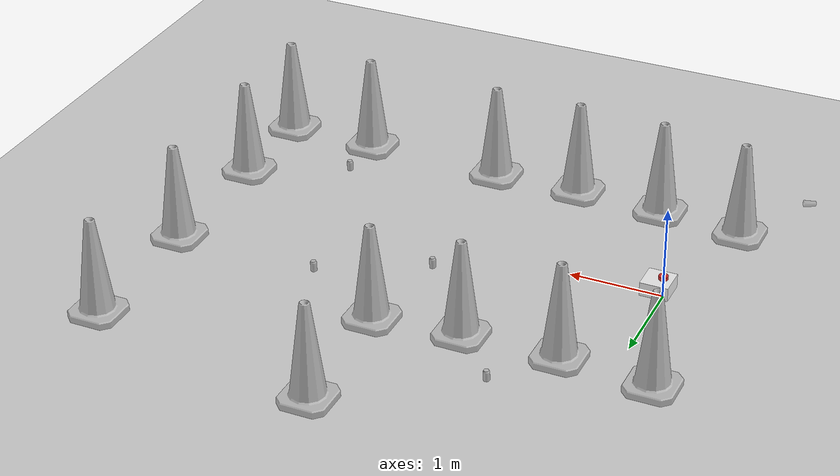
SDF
<sdf version="1.7">
 <world name="default">
  <light name="sun" type="directional">
   <pose>0 0 10 0 -0 0</pose>
   <diffuse>0.8 0.8 0.8 1</diffuse>
   <specular>0.2 0.2 0.2 1</specular>
   <attenuation>
    <range>1000</range>
    <constant>0.9</constant>
    <linear>0.01</linear>
    <quadratic>0.001</quadratic>
   </attenuation>
   <direction>-0.5 0.1 -0.9</direction>
   <spot><inner_angle>0</inner_angle><outer_angle>0</outer_angle><falloff>0</falloff></spot>
  </light>
  <model name="ground_plane">
   <static>1</static>
   <link name="link">
    <collision name="collision">
     <geometry><plane><normal>0 0 1</normal><size>100 100</size></plane></geometry>
     <surface>
      <contact><collide_bitmask>65535</collide_bitmask></contact>
      <friction><ode><mu>100</mu><mu2>50</mu2></ode></friction>
     </surface>
    </collision>
    <visual name="visual">
     <cast_shadows>0</cast_shadows>
     <geometry><plane><normal>0 0 1</normal><size>100 100</size></plane></geometry>
     <material>
      <script><uri>file://media/materials/scripts/gazebo.material</uri><name>Gazebo/Grey</name></script>
     </material>
    </visual>
   </link>
  </model>
  <gravity>0 0 -9.8</gravity>
  <magnetic_field>6e-06 2.3e-05 -4.2e-05</magnetic_field>
  <atmosphere type="adiabatic"/>
  <physics type="ode">
   <max_step_size>0.001</max_step_size>
   <real_time_factor>1</real_time_factor>
   <real_time_update_rate>1000</real_time_update_rate>
  </physics>
  <scene><ambient>0.4 0.4 0.4 1</ambient><background>0.7 0.7 0.7 1</background><shadows>1</shadows></scene>
  <audio><device>default</device></audio>
  <spherical_coordinates>
   <surface_model>EARTH_WGS84</surface_model>
   <latitude_deg>0</latitude_deg>
   <longitude_deg>0</longitude_deg>
   <elevation>0</elevation>
   <heading_deg>0</heading_deg>
  </spherical_coordinates>
  <model name="snail_bot">
   <link name="base_link">
    <inertial>
     <pose>0.055714 0 0.078571 0 -0 0</pose>
     <mass>0.7</mass>
     <inertia>
      <ixx>0.0064169</ixx>
      <ixy>0</ixy>
      <ixz>0.00118929</ixz>
      <iyy>0.00745405</iyy>
      <iyz>0</iyz>
      <izz>0.00876214</izz>
     </inertia>
    </inertial>
    <collision name="base_link_fixed_joint_lump__chassis_collision">
     <pose>0.05 0 0.075 0 -0 0</pose>
     <geometry><box><size>0.3 0.3 0.15</size></box></geometry>
    </collision>
    <collision name="base_link_fixed_joint_lump__caster_wheel_collision_1">
     <pose>0.14 0 0 0 -0 0</pose>
     <geometry><sphere><radius>0.05</radius></sphere></geometry>
     <surface><friction><ode><mu>0.001</mu><mu2>0.001</mu2></ode></friction></surface>
    </collision>
    <collision name="base_link_fixed_joint_lump__laser_frame_collision_2">
     <pose>0 0 0.175 0 -0 0</pose>
     <geometry><cylinder><length>0.04</length><radius>0.05</radius></cylinder></geometry>
    </collision>
    <visual name="base_link_fixed_joint_lump__chassis_visual">
     <pose>0.05 0 0.075 0 -0 0</pose>
     <geometry><box><size>0.3 0.3 0.15</size></box></geometry>
     <material>
      <script><name>Gazebo/White</name><uri>file://media/materials/scripts/gazebo.material</uri></script>
     </material>
    </visual>
    <visual name="base_link_fixed_joint_lump__caster_wheel_visual_1">
     <pose>0.14 0 0 0 -0 0</pose>
     <geometry><sphere><radius>0.05</radius></sphere></geometry>
     <material>
      <script><name>Gazebo/Black</name><uri>file://media/materials/scripts/gazebo.material</uri></script>
     </material>
    </visual>
    <visual name="base_link_fixed_joint_lump__laser_frame_visual_2">
     <pose>0 0 0.175 0 -0 0</pose>
     <geometry><cylinder><length>0.04</length><radius>0.05</radius></cylinder></geometry>
     <material>
      <script><name>Gazebo/Red</name><uri>file://media/materials/scripts/gazebo.material</uri></script>
     </material>
    </visual>
    <sensor name="laser" type="ray">
     <visualize>1</visualize>
     <update_rate>10</update_rate>
     <ray>
      <scan>
       <horizontal>
        <samples>360</samples>
        <min_angle>-3.14</min_angle>
        <max_angle>3.14</max_angle>
        <resolution>1</resolution>
       </horizontal>
       <vertical><samples>1</samples><min_angle>0</min_angle><max_angle>0</max_angle></vertical>
      </scan>
      <range><min>0.3</min><max>12</max></range>
     </ray>
     <plugin name="laser_controller" filename="libgazebo_ros_ray_sensor.so">
      <ros><argument>~/out:=scan</argument></ros>
      <output_type>sensor_msgs/LaserScan</output_type>
      <frame_name>laser_frame</frame_name>
     </plugin>
     <pose>0 0 0.175 0 -0 0</pose>
    </sensor>
   </link>
   <joint name="left_wheel_joint" type="revolute">
    <pose relative_to="base_link">0 0.175 0 -1.5708 0 0</pose>
    <parent>base_link</parent>
    <child>left_wheel</child>
    <axis>
     <xyz>0 0 1</xyz>
     <limit><lower>-1e+16</lower><upper>1e+16</upper></limit>
     <dynamics><spring_reference>0</spring_reference><spring_stiffness>0</spring_stiffness></dynamics>
    </axis>
   </joint>
   <link name="left_wheel">
    <pose relative_to="left_wheel_joint">0 0 0 0 -0 0</pose>
    <inertial>
     <mass>0.1</mass>
     <inertia>
      <ixx>7.58333e-05</ixx>
      <ixy>0</ixy>
      <ixz>0</ixz>
      <iyy>7.58333e-05</iyy>
      <iyz>0</iyz>
      <izz>0.000125</izz>
     </inertia>
    </inertial>
    <collision name="left_wheel_collision">
     <geometry><cylinder><length>0.04</length><radius>0.05</radius></cylinder></geometry>
    </collision>
    <visual name="left_wheel_visual">
     <geometry><cylinder><length>0.04</length><radius>0.05</radius></cylinder></geometry>
     <material>
      <script><name>Gazebo/Blue</name><uri>file://media/materials/scripts/gazebo.material</uri></script>
     </material>
    </visual>
   </link>
   <joint name="right_wheel_joint" type="revolute">
    <pose relative_to="base_link">0 -0.175 0 1.5708 -0 0</pose>
    <parent>base_link</parent>
    <child>right_wheel</child>
    <axis>
     <xyz>0 0 -1</xyz>
     <limit><lower>-1e+16</lower><upper>1e+16</upper></limit>
     <dynamics><spring_reference>0</spring_reference><spring_stiffness>0</spring_stiffness></dynamics>
    </axis>
   </joint>
   <link name="right_wheel">
    <pose relative_to="right_wheel_joint">0 0 0 0 -0 0</pose>
    <inertial>
     <mass>0.1</mass>
     <inertia>
      <ixx>7.58333e-05</ixx>
      <ixy>0</ixy>
      <ixz>0</ixz>
      <iyy>7.58333e-05</iyy>
      <iyz>0</iyz>
      <izz>0.000125</izz>
     </inertia>
    </inertial>
    <collision name="right_wheel_collision">
     <geometry><cylinder><length>0.04</length><radius>0.05</radius></cylinder></geometry>
    </collision>
    <visual name="right_wheel_visual">
     <geometry><cylinder><length>0.04</length><radius>0.05</radius></cylinder></geometry>
     <material>
      <script><name>Gazebo/Blue</name><uri>file://media/materials/scripts/gazebo.material</uri></script>
     </material>
    </visual>
   </link>
   <static>0</static>
   <plugin name="diff_drive" filename="libgazebo_ros_diff_drive.so">
    <left_joint>left_wheel_joint</left_joint>
    <right_joint>right_wheel_joint</right_joint>
    <wheel_separation>0.35</wheel_separation>
    <wheel_diameter>0.1</wheel_diameter>
    <max_wheel_torque>200</max_wheel_torque>
    <max_wheel_acceleration>10.0</max_wheel_acceleration>
    <odometry_frame>odom</odometry_frame>
    <robot_base_frame>base_link</robot_base_frame>
    <publish_odom>1</publish_odom>
    <publish_odom_tf>1</publish_odom_tf>
    <publish_wheel_tf>1</publish_wheel_tf>
   </plugin>
   <pose>0.007209 4.7e-05 0.05 0 1.2e-05 0.000178</pose>
  </model>
  <model name="coke_can">
   <link name="link">
    <inertial>
     <pose>0 0 0.06 0 -0 0</pose>
     <mass>0.39</mass>
     <inertia>
      <ixx>0.00055575</ixx>
      <ixy>0</ixy>
      <ixz>0</ixz>
      <iyy>0.00055575</iyy>
      <iyz>0</iyz>
      <izz>0.0001755</izz>
     </inertia>
    </inertial>
    <collision name="collision">
     <pose>0.003937 0.004724 -0.18 0 -0 0</pose>
     <geometry><mesh><uri>model://coke_can/meshes/coke_can.dae</uri></mesh></geometry>
     <surface>
      <friction><ode><mu>1</mu><mu2>1</mu2></ode></friction>
      <contact><ode><kp>1e+07</kp><kd>1</kd><min_depth>0.001</min_depth><max_vel>0.1</max_vel></ode></contact>
     </surface>
    </collision>
    <visual name="visual">
     <pose>0.003937 0.004724 -0.18 0 -0 0</pose>
     <geometry><mesh><uri>model://coke_can/meshes/coke_can.dae</uri></mesh></geometry>
    </visual>
   </link>
   <pose>1.04732 2.04238 -0.003408 -0.039944 0.006159 -0.000755</pose>
  </model>
  <model name="plastic_cup">
   <link name="link">
    <pose>0 0 0.065 0 -0 0</pose>
    <inertial>
     <mass>0.0599</mass>
     <inertia>
      <ixx>0.000302896</ixx>
      <ixy>0</ixy>
      <ixz>0</ixz>
      <iyy>0.000302896</iyy>
      <iyz>0</iyz>
      <izz>3.28764e-05</izz>
     </inertia>
    </inertial>
    <collision name="collision">
     <geometry><mesh><uri>model://plastic_cup/meshes/plastic_cup.dae</uri></mesh></geometry>
     <surface>
      <contact>
       <poissons_ratio>0.35</poissons_ratio>
       <elastic_modulus>3.10264e+09</elastic_modulus>
       <ode><kp>100000</kp><kd>100</kd><max_vel>100</max_vel><min_depth>0.001</min_depth></ode>
      </contact>
      <friction>
       <torsional>
        <coefficient>1</coefficient>
        <use_patch_radius>0</use_patch_radius>
        <surface_radius>0.01</surface_radius>
       </torsional>
      </friction>
     </surface>
    </collision>
    <visual name="visual">
     <geometry><mesh><uri>model://plastic_cup/meshes/plastic_cup.dae</uri></mesh></geometry>
     <material>
      <script><uri>file://media/materials/scripts/gazebo.material</uri><name>Gazebo/GreyTransparent</name></script>
     </material>
    </visual>
   </link>
   <pose>-0.908589 -2.33778 0.018778 1.49594 -0.195802 2.08366</pose>
  </model>
  <model name="Construction Cone">
   <link name="link">
    <collision name="collision">
     <geometry>
      <mesh><scale>10 10 10</scale><uri>model://construction_cone/meshes/construction_cone.dae</uri></mesh>
     </geometry>
    </collision>
    <visual name="visual">
     <geometry>
      <mesh><scale>10 10 10</scale><uri>model://construction_cone/meshes/construction_cone.dae</uri></mesh>
     </geometry>
    </visual>
    <inertial>
     <inertia><ixx>1</ixx><ixy>0</ixy><ixz>0</ixz><iyy>1</iyy><iyz>0</iyz><izz>1</izz></inertia>
     <mass>1</mass>
    </inertial>
   </link>
   <pose>-0.353766 -1.41738 -0 0 -0 0</pose>
  </model>
  <model name="Construction Cone_clone">
   <link name="link">
    <collision name="collision">
     <geometry>
      <mesh><scale>10 10 10</scale><uri>model://construction_cone/meshes/construction_cone.dae</uri></mesh>
     </geometry>
    </collision>
    <visual name="visual">
     <geometry>
      <mesh><scale>10 10 10</scale><uri>model://construction_cone/meshes/construction_cone.dae</uri></mesh>
     </geometry>
    </visual>
    <inertial>
     <inertia><ixx>1</ixx><ixy>0</ixy><ixz>0</ixz><iyy>1</iyy><iyz>0</iyz><izz>1</izz></inertia>
     <mass>1</mass>
    </inertial>
   </link>
   <pose>0.560921 -1.51327 -4e-06 4e-06 -1e-06 0</pose>
  </model>
  <model name="Construction Cone_clone_0">
   <link name="link">
    <collision name="collision">
     <geometry>
      <mesh><scale>10 10 10</scale><uri>model://construction_cone/meshes/construction_cone.dae</uri></mesh>
     </geometry>
    </collision>
    <visual name="visual">
     <geometry>
      <mesh><scale>10 10 10</scale><uri>model://construction_cone/meshes/construction_cone.dae</uri></mesh>
     </geometry>
    </visual>
    <inertial>
     <inertia><ixx>1</ixx><ixy>0</ixy><ixz>0</ixz><iyy>1</iyy><iyz>0</iyz><izz>1</izz></inertia>
     <mass>1</mass>
    </inertial>
   </link>
   <pose>1.51639 -1.55596 -4e-06 4e-06 -1e-06 0</pose>
  </model>
  <model name="Construction Cone_clone_1">
   <link name="link">
    <collision name="collision">
     <geometry>
      <mesh><scale>10 10 10</scale><uri>model://construction_cone/meshes/construction_cone.dae</uri></mesh>
     </geometry>
    </collision>
    <visual name="visual">
     <geometry>
      <mesh><scale>10 10 10</scale><uri>model://construction_cone/meshes/construction_cone.dae</uri></mesh>
     </geometry>
    </visual>
    <inertial>
     <inertia><ixx>1</ixx><ixy>0</ixy><ixz>0</ixz><iyy>1</iyy><iyz>0</iyz><izz>1</izz></inertia>
     <mass>1</mass>
    </inertial>
   </link>
   <pose>-0.422776 1.52289 -1e-05 -1e-06 0 0</pose>
  </model>
  <model name="Construction Cone_clone_2">
   <link name="link">
    <collision name="collision">
     <geometry>
      <mesh><scale>10 10 10</scale><uri>model://construction_cone/meshes/construction_cone.dae</uri></mesh>
     </geometry>
    </collision>
    <visual name="visual">
     <geometry>
      <mesh><scale>10 10 10</scale><uri>model://construction_cone/meshes/construction_cone.dae</uri></mesh>
     </geometry>
    </visual>
    <inertial>
     <inertia><ixx>1</ixx><ixy>0</ixy><ixz>0</ixz><iyy>1</iyy><iyz>0</iyz><izz>1</izz></inertia>
     <mass>1</mass>
    </inertial>
   </link>
   <pose>0.548945 1.44288 -1e-05 -1e-06 0 0</pose>
  </model>
  <model name="Construction Cone_clone_3">
   <link name="link">
    <collision name="collision">
     <geometry>
      <mesh><scale>10 10 10</scale><uri>model://construction_cone/meshes/construction_cone.dae</uri></mesh>
     </geometry>
    </collision>
    <visual name="visual">
     <geometry>
      <mesh><scale>10 10 10</scale><uri>model://construction_cone/meshes/construction_cone.dae</uri></mesh>
     </geometry>
    </visual>
    <inertial>
     <inertia><ixx>1</ixx><ixy>0</ixy><ixz>0</ixz><iyy>1</iyy><iyz>0</iyz><izz>1</izz></inertia>
     <mass>1</mass>
    </inertial>
   </link>
   <pose>1.5649 1.46781 -0 -0 -0 -0</pose>
  </model>
  <model name="Construction Cone_clone_4">
   <link name="link">
    <collision name="collision">
     <geometry>
      <mesh><scale>10 10 10</scale><uri>model://construction_cone/meshes/construction_cone.dae</uri></mesh>
     </geometry>
    </collision>
    <visual name="visual">
     <geometry>
      <mesh><scale>10 10 10</scale><uri>model://construction_cone/meshes/construction_cone.dae</uri></mesh>
     </geometry>
    </visual>
    <inertial>
     <inertia><ixx>1</ixx><ixy>0</ixy><ixz>0</ixz><iyy>1</iyy><iyz>0</iyz><izz>1</izz></inertia>
     <mass>1</mass>
    </inertial>
   </link>
   <pose>2.46912 -1.52638 -1e-05 -0 -0 -0</pose>
  </model>
  <model name="Construction Cone_clone_5">
   <link name="link">
    <collision name="collision">
     <geometry>
      <mesh><scale>10 10 10</scale><uri>model://construction_cone/meshes/construction_cone.dae</uri></mesh>
     </geometry>
    </collision>
    <visual name="visual">
     <geometry>
      <mesh><scale>10 10 10</scale><uri>model://construction_cone/meshes/construction_cone.dae</uri></mesh>
     </geometry>
    </visual>
    <inertial>
     <inertia><ixx>1</ixx><ixy>0</ixy><ixz>0</ixz><iyy>1</iyy><iyz>0</iyz><izz>1</izz></inertia>
     <mass>1</mass>
    </inertial>
   </link>
   <pose>2.48298 1.56655 -1e-05 -1e-06 0 0</pose>
  </model>
  <model name="Construction Cone_clone_6">
   <link name="link">
    <collision name="collision">
     <geometry>
      <mesh><scale>10 10 10</scale><uri>model://construction_cone/meshes/construction_cone.dae</uri></mesh>
     </geometry>
    </collision>
    <visual name="visual">
     <geometry>
      <mesh><scale>10 10 10</scale><uri>model://construction_cone/meshes/construction_cone.dae</uri></mesh>
     </geometry>
    </visual>
    <inertial>
     <inertia><ixx>1</ixx><ixy>0</ixy><ixz>0</ixz><iyy>1</iyy><iyz>0</iyz><izz>1</izz></inertia>
     <mass>1</mass>
    </inertial>
   </link>
   <pose>4 -1.56387 0 -0 -0 -0</pose>
  </model>
  <model name="Construction Cone_clone_7">
   <link name="link">
    <collision name="collision">
     <geometry>
      <mesh><scale>10 10 10</scale><uri>model://construction_cone/meshes/construction_cone.dae</uri></mesh>
     </geometry>
    </collision>
    <visual name="visual">
     <geometry>
      <mesh><scale>10 10 10</scale><uri>model://construction_cone/meshes/construction_cone.dae</uri></mesh>
     </geometry>
    </visual>
    <inertial>
     <inertia><ixx>1</ixx><ixy>0</ixy><ixz>0</ixz><iyy>1</iyy><iyz>0</iyz><izz>1</izz></inertia>
     <mass>1</mass>
    </inertial>
   </link>
   <pose>5 -1.5833 -8e-06 -5e-06 -0 -0</pose>
  </model>
  <model name="Construction Cone_clone_8">
   <link name="link">
    <collision name="collision">
     <geometry>
      <mesh><scale>10 10 10</scale><uri>model://construction_cone/meshes/construction_cone.dae</uri></mesh>
     </geometry>
    </collision>
    <visual name="visual">
     <geometry>
      <mesh><scale>10 10 10</scale><uri>model://construction_cone/meshes/construction_cone.dae</uri></mesh>
     </geometry>
    </visual>
    <inertial>
     <inertia><ixx>1</ixx><ixy>0</ixy><ixz>0</ixz><iyy>1</iyy><iyz>0</iyz><izz>1</izz></inertia>
     <mass>1</mass>
    </inertial>
   </link>
   <pose>5 -0.509441 -0 -0 -0 -0</pose>
  </model>
  <model name="Construction Cone_clone_9">
   <link name="link">
    <collision name="collision">
     <geometry>
      <mesh><scale>10 10 10</scale><uri>model://construction_cone/meshes/construction_cone.dae</uri></mesh>
     </geometry>
    </collision>
    <visual name="visual">
     <geometry>
      <mesh><scale>10 10 10</scale><uri>model://construction_cone/meshes/construction_cone.dae</uri></mesh>
     </geometry>
    </visual>
    <inertial>
     <inertia><ixx>1</ixx><ixy>0</ixy><ixz>0</ixz><iyy>1</iyy><iyz>0</iyz><izz>1</izz></inertia>
     <mass>1</mass>
    </inertial>
   </link>
   <pose>5 1 -1e-05 0 -0 0</pose>
  </model>
  <model name="Construction Cone_clone_10">
   <link name="link">
    <collision name="collision">
     <geometry>
      <mesh><scale>10 10 10</scale><uri>model://construction_cone/meshes/construction_cone.dae</uri></mesh>
     </geometry>
    </collision>
    <visual name="visual">
     <geometry>
      <mesh><scale>10 10 10</scale><uri>model://construction_cone/meshes/construction_cone.dae</uri></mesh>
     </geometry>
    </visual>
    <inertial>
     <inertia><ixx>1</ixx><ixy>0</ixy><ixz>0</ixz><iyy>1</iyy><iyz>0</iyz><izz>1</izz></inertia>
     <mass>1</mass>
    </inertial>
   </link>
   <pose>5 2.56347 0 -1e-06 0 0</pose>
  </model>
  <model name="Construction Cone_clone_11">
   <link name="link">
    <collision name="collision">
     <geometry>
      <mesh><scale>10 10 10</scale><uri>model://construction_cone/meshes/construction_cone.dae</uri></mesh>
     </geometry>
    </collision>
    <visual name="visual">
     <geometry>
      <mesh><scale>10 10 10</scale><uri>model://construction_cone/meshes/construction_cone.dae</uri></mesh>
     </geometry>
    </visual>
    <inertial>
     <inertia><ixx>1</ixx><ixy>0</ixy><ixz>0</ixz><iyy>1</iyy><iyz>0</iyz><izz>1</izz></inertia>
     <mass>1</mass>
    </inertial>
   </link>
   <pose>2.43712 3 -0 0 -0 0</pose>
  </model>
  <model name="coke_can_clone">
   <link name="link">
    <inertial>
     <pose>0 0 0.06 0 -0 0</pose>
     <mass>0.39</mass>
     <inertia>
      <ixx>0.00055575</ixx>
      <ixy>0</ixy>
      <ixz>0</ixz>
      <iyy>0.00055575</iyy>
      <iyz>0</iyz>
      <izz>0.0001755</izz>
     </inertia>
    </inertial>
    <collision name="collision">
     <pose>0.003937 0.004724 -0.18 0 -0 0</pose>
     <geometry><mesh><uri>model://coke_can/meshes/coke_can.dae</uri></mesh></geometry>
     <surface>
      <friction><ode><mu>1</mu><mu2>1</mu2></ode></friction>
      <contact><ode><kp>1e+07</kp><kd>1</kd><min_depth>0.001</min_depth><max_vel>0.1</max_vel></ode></contact>
     </surface>
    </collision>
    <visual name="visual">
     <pose>0.003937 0.004724 -0.18 0 -0 0</pose>
     <geometry><mesh><uri>model://coke_can/meshes/coke_can.dae</uri></mesh></geometry>
    </visual>
   </link>
   <pose>2.33336 0.451074 -0.003408 -0.039937 0.006167 -0.000756</pose>
  </model>
  <model name="coke_can_clone_0">
   <link name="link">
    <inertial>
     <pose>0 0 0.06 0 -0 0</pose>
     <mass>0.39</mass>
     <inertia>
      <ixx>0.00055575</ixx>
      <ixy>0</ixy>
      <ixz>0</ixz>
      <iyy>0.00055575</iyy>
      <iyz>0</iyz>
      <izz>0.0001755</izz>
     </inertia>
    </inertial>
    <collision name="collision">
     <pose>0.003937 0.004724 -0.18 0 -0 0</pose>
     <geometry><mesh><uri>model://coke_can/meshes/coke_can.dae</uri></mesh></geometry>
     <surface>
      <friction><ode><mu>1</mu><mu2>1</mu2></ode></friction>
      <contact><ode><kp>1e+07</kp><kd>1</kd><min_depth>0.001</min_depth><max_vel>0.1</max_vel></ode></contact>
     </surface>
    </collision>
    <visual name="visual">
     <pose>0.003937 0.004724 -0.18 0 -0 0</pose>
     <geometry><mesh><uri>model://coke_can/meshes/coke_can.dae</uri></mesh></geometry>
    </visual>
   </link>
   <pose>3.99999 -0.999988 -0.003369 -0.042062 0.004288 -0.00077</pose>
  </model>
  <model name="coke_can_clone_1">
   <link name="link">
    <inertial>
     <pose>0 0 0.06 0 -0 0</pose>
     <mass>0.39</mass>
     <inertia>
      <ixx>0.00055575</ixx>
      <ixy>0</ixy>
      <ixz>0</ixz>
      <iyy>0.00055575</iyy>
      <iyz>0</iyz>
      <izz>0.0001755</izz>
     </inertia>
    </inertial>
    <collision name="collision">
     <pose>0.003937 0.004724 -0.18 0 -0 0</pose>
     <geometry><mesh><uri>model://coke_can/meshes/coke_can.dae</uri></mesh></geometry>
     <surface>
      <friction><ode><mu>1</mu><mu2>1</mu2></ode></friction>
      <contact><ode><kp>1e+07</kp><kd>1</kd><min_depth>0.001</min_depth><max_vel>0.1</max_vel></ode></contact>
     </surface>
    </collision>
    <visual name="visual">
     <pose>0.003937 0.004724 -0.18 0 -0 0</pose>
     <geometry><mesh><uri>model://coke_can/meshes/coke_can.dae</uri></mesh></geometry>
    </visual>
   </link>
   <pose>3.41675 1.00001 -0.003337 -0.043867 0.002596 -0.000777</pose>
  </model>
 </world>
</sdf>
